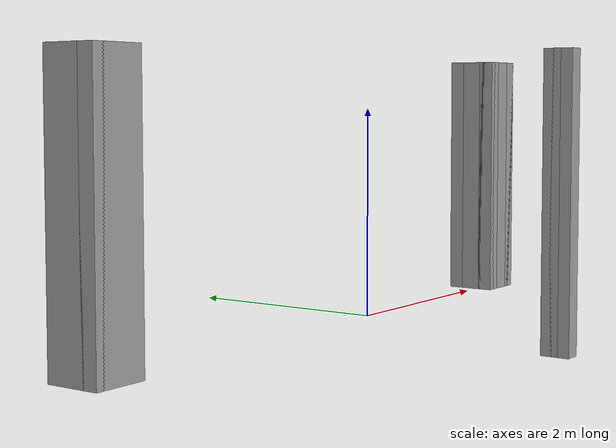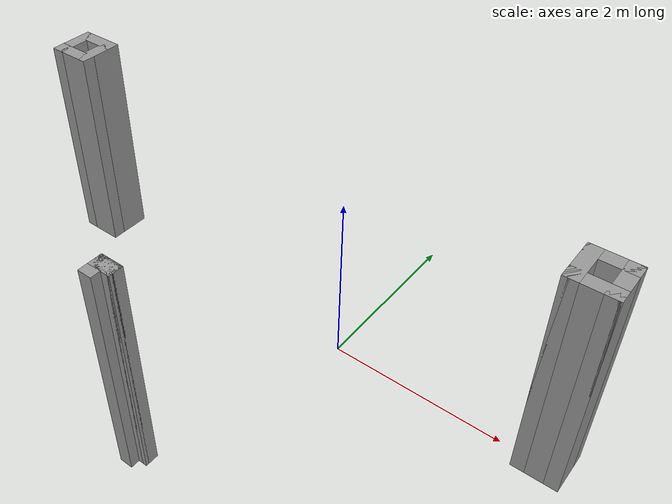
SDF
<?xml version='1.0'?>
<sdf version='1.6'>
  <model name='garage2'>
    <pose frame=''>-0.576863 -1.07175 0 0 -0 0</pose>
    <link name='Wall_11'>
      <collision name='Wall_11_Collision'>
        <geometry>
          <box>
            <size>0.25 0.15 2.5</size>
          </box>
        </geometry>
        <pose frame=''>0 0 1.25 0 -0 0</pose>
      </collision>
      <visual name='Wall_11_Visual'>
        <pose frame=''>0 0 1.25 0 -0 0</pose>
        <geometry>
          <box>
            <size>0.25 0.15 2.5</size>
          </box>
        </geometry>
        <material>
          <script>
            <uri>file://media/materials/scripts/gazebo.material</uri>
            <name>Gazebo/Grey</name>
          </script>
          <ambient>1 1 1 1</ambient>
        </material>
        <meta>
          <layer>0</layer>
        </meta>
      </visual>
      <pose frame=''>-0.155 -1.27 0 0 -0 1.5708</pose>
    </link>
    <link name='Wall_12'>
      <collision name='Wall_12_Collision'>
        <geometry>
          <box>
            <size>0.25 0.15 2.5</size>
          </box>
        </geometry>
        <pose frame=''>0 0 1.25 0 -0 0</pose>
      </collision>
      <visual name='Wall_12_Visual'>
        <pose frame=''>0 0 1.25 0 -0 0</pose>
        <geometry>
          <box>
            <size>0.25 0.15 2.5</size>
          </box>
        </geometry>
        <material>
          <script>
            <uri>file://media/materials/scripts/gazebo.material</uri>
            <name>Gazebo/Grey</name>
          </script>
          <ambient>1 1 1 1</ambient>
        </material>
        <meta>
          <layer>0</layer>
        </meta>
      </visual>
      <pose frame=''>-0.105 -1.22 0 0 -0 0</pose>
    </link>
    <link name='Wall_13'>
      <collision name='Wall_13_Collision'>
        <geometry>
          <box>
            <size>0.25 0.15 2.5</size>
          </box>
        </geometry>
        <pose frame=''>0 0 1.25 0 -0 0</pose>
      </collision>
      <visual name='Wall_13_Visual'>
        <pose frame=''>0 0 1.25 0 -0 0</pose>
        <geometry>
          <box>
            <size>0.25 0.15 2.5</size>
          </box>
        </geometry>
        <material>
          <script>
            <uri>file://media/materials/scripts/gazebo.material</uri>
            <name>Gazebo/Grey</name>
          </script>
          <ambient>1 1 1 1</ambient>
        </material>
        <meta>
          <layer>0</layer>
        </meta>
      </visual>
      <pose frame=''>-0.105 -1.22 0 0 -0 3.14159</pose>
    </link>
    <link name='Wall_15'>
      <collision name='Wall_15_Collision'>
        <geometry>
          <box>
            <size>0.5 0.15 2.5</size>
          </box>
        </geometry>
        <pose frame=''>0 0 1.25 0 -0 0</pose>
      </collision>
      <visual name='Wall_15_Visual'>
        <pose frame=''>0 0 1.25 0 -0 0</pose>
        <geometry>
          <box>
            <size>0.5 0.15 2.5</size>
          </box>
        </geometry>
        <material>
          <script>
            <uri>file://media/materials/scripts/gazebo.material</uri>
            <name>Gazebo/Grey</name>
          </script>
          <ambient>1 1 1 1</ambient>
        </material>
        <meta>
          <layer>0</layer>
        </meta>
      </visual>
      <pose frame=''>2.845 1.145 0 0 -0 -1.5708</pose>
    </link>
    <link name='Wall_16'>
      <collision name='Wall_16_Collision'>
        <geometry>
          <box>
            <size>0.5 0.15 2.5</size>
          </box>
        </geometry>
        <pose frame=''>0 0 1.25 0 -0 0</pose>
      </collision>
      <visual name='Wall_16_Visual'>
        <pose frame=''>0 0 1.25 0 -0 0</pose>
        <geometry>
          <box>
            <size>0.5 0.15 2.5</size>
          </box>
        </geometry>
        <material>
          <script>
            <uri>file://media/materials/scripts/gazebo.material</uri>
            <name>Gazebo/Grey</name>
          </script>
          <ambient>1 1 1 1</ambient>
        </material>
        <meta>
          <layer>0</layer>
        </meta>
      </visual>
      <pose frame=''>3.02 0.97 0 0 -0 0</pose>
    </link>
    <link name='Wall_17'>
      <collision name='Wall_17_Collision'>
        <geometry>
          <box>
            <size>0.5 0.15 2.5</size>
          </box>
        </geometry>
        <pose frame=''>0 0 1.25 0 -0 0</pose>
      </collision>
      <visual name='Wall_17_Visual'>
        <pose frame=''>0 0 1.25 0 -0 0</pose>
        <geometry>
          <box>
            <size>0.5 0.15 2.5</size>
          </box>
        </geometry>
        <material>
          <script>
            <uri>file://media/materials/scripts/gazebo.material</uri>
            <name>Gazebo/Grey</name>
          </script>
          <ambient>1 1 1 1</ambient>
        </material>
        <meta>
          <layer>0</layer>
        </meta>
      </visual>
      <pose frame=''>3.195 1.145 0 0 -0 1.5708</pose>
    </link>
    <link name='Wall_18'>
      <collision name='Wall_18_Collision'>
        <geometry>
          <box>
            <size>0.5 0.15 2.5</size>
          </box>
        </geometry>
        <pose frame=''>0 0 1.25 0 -0 0</pose>
      </collision>
      <visual name='Wall_18_Visual'>
        <pose frame=''>0 0 1.25 0 -0 0</pose>
        <geometry>
          <box>
            <size>0.5 0.15 2.5</size>
          </box>
        </geometry>
        <material>
          <script>
            <uri>file://media/materials/scripts/gazebo.material</uri>
            <name>Gazebo/Grey</name>
          </script>
          <ambient>1 1 1 1</ambient>
        </material>
        <meta>
          <layer>0</layer>
        </meta>
      </visual>
      <pose frame=''>3.02 1.32 0 0 -0 3.14159</pose>
    </link>
    <link name='Wall_5'>
      <collision name='Wall_5_Collision'>
        <geometry>
          <box>
            <size>0.5 0.15 2.5</size>
          </box>
        </geometry>
        <pose frame=''>0 0 1.25 0 -0 0</pose>
      </collision>
      <visual name='Wall_5_Visual'>
        <pose frame=''>0 0 1.25 0 -0 0</pose>
        <geometry>
          <box>
            <size>0.5 0.15 2.5</size>
          </box>
        </geometry>
        <material>
          <script>
            <uri>file://media/materials/scripts/gazebo.material</uri>
            <name>Gazebo/Grey</name>
          </script>
          <ambient>1 1 1 1</ambient>
        </material>
        <meta>
          <layer>0</layer>
        </meta>
      </visual>
      <pose frame=''>-3.195 1.105 0 0 -0 1.5708</pose>
    </link>
    <link name='Wall_6'>
      <collision name='Wall_6_Collision'>
        <geometry>
          <box>
            <size>0.5 0.15 2.5</size>
          </box>
        </geometry>
        <pose frame=''>0 0 1.25 0 -0 0</pose>
      </collision>
      <visual name='Wall_6_Visual'>
        <pose frame=''>0 0 1.25 0 -0 0</pose>
        <geometry>
          <box>
            <size>0.5 0.15 2.5</size>
          </box>
        </geometry>
        <material>
          <script>
            <uri>file://media/materials/scripts/gazebo.material</uri>
            <name>Gazebo/Grey</name>
          </script>
          <ambient>1 1 1 1</ambient>
        </material>
        <meta>
          <layer>0</layer>
        </meta>
      </visual>
      <pose frame=''>-3.02 1.28 0 0 -0 0</pose>
    </link>
    <link name='Wall_7'>
      <collision name='Wall_7_Collision'>
        <geometry>
          <box>
            <size>0.5 0.15 2.5</size>
          </box>
        </geometry>
        <pose frame=''>0 0 1.25 0 -0 0</pose>
      </collision>
      <visual name='Wall_7_Visual'>
        <pose frame=''>0 0 1.25 0 -0 0</pose>
        <geometry>
          <box>
            <size>0.5 0.15 2.5</size>
          </box>
        </geometry>
        <material>
          <script>
            <uri>file://media/materials/scripts/gazebo.material</uri>
            <name>Gazebo/Grey</name>
          </script>
          <ambient>1 1 1 1</ambient>
        </material>
        <meta>
          <layer>0</layer>
        </meta>
      </visual>
      <pose frame=''>-2.845 1.105 0 0 -0 -1.5708</pose>
    </link>
    <link name='Wall_8'>
      <collision name='Wall_8_Collision'>
        <geometry>
          <box>
            <size>0.5 0.15 2.5</size>
          </box>
        </geometry>
        <pose frame=''>0 0 1.25 0 -0 0</pose>
      </collision>
      <visual name='Wall_8_Visual'>
        <pose frame=''>0 0 1.25 0 -0 0</pose>
        <geometry>
          <box>
            <size>0.5 0.15 2.5</size>
          </box>
        </geometry>
        <material>
          <script>
            <uri>file://media/materials/scripts/gazebo.material</uri>
            <name>Gazebo/Grey</name>
          </script>
          <ambient>1 1 1 1</ambient>
        </material>
        <meta>
          <layer>0</layer>
        </meta>
      </visual>
      <pose frame=''>-3.02 0.93 0 0 -0 3.14159</pose>
    </link>
    <static>1</static>
  </model>
</sdf>
